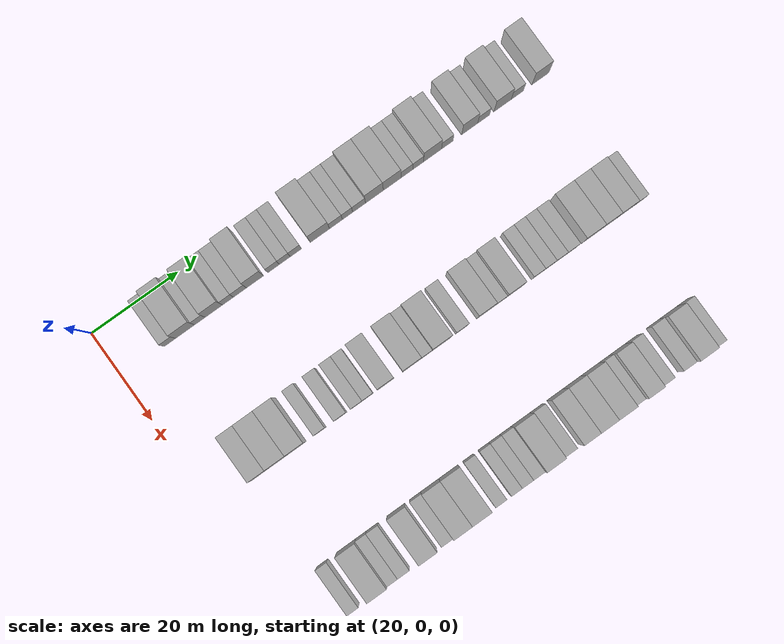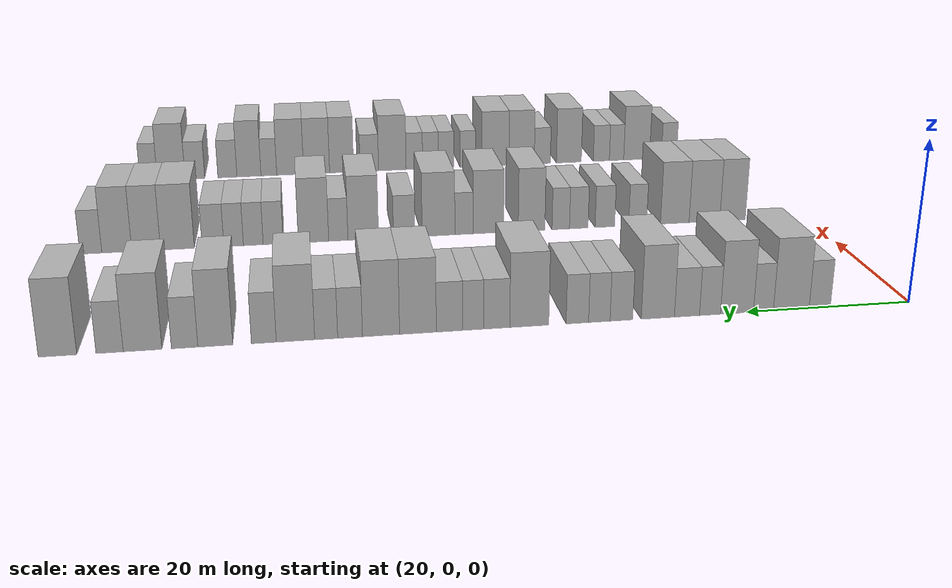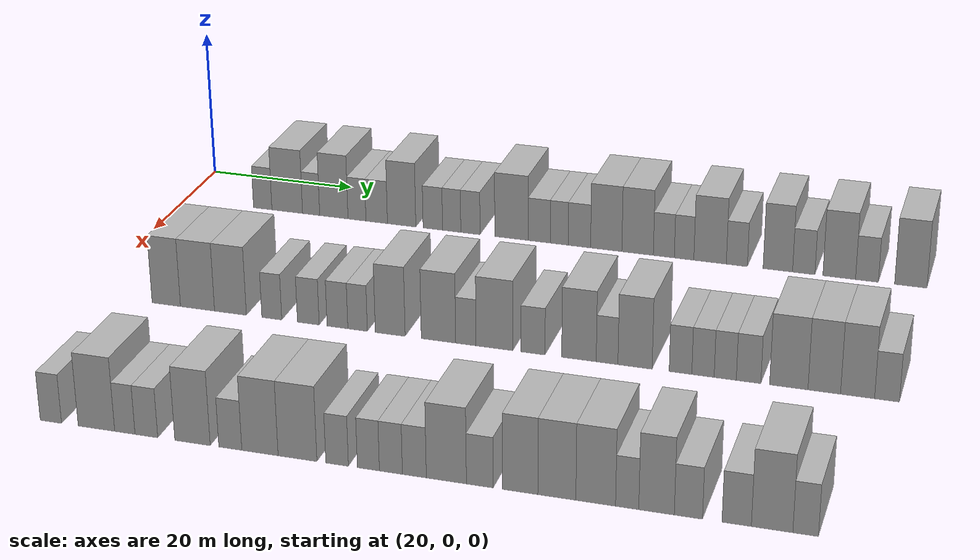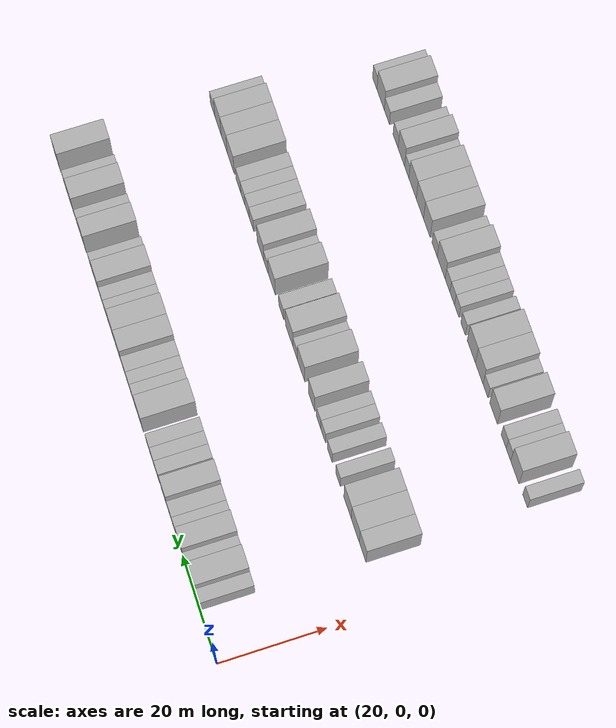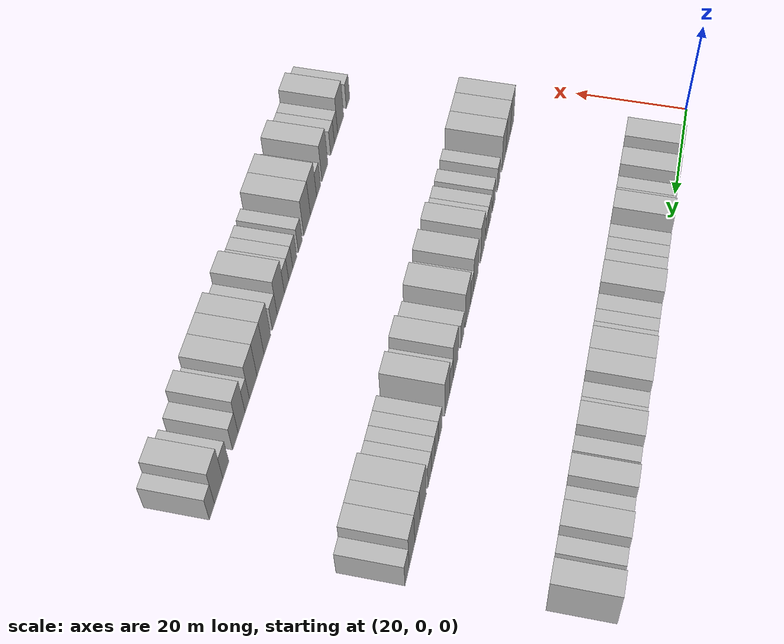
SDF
<sdf version="1.6">
 <world name="default">
  <model name="building_65">
   <static>1</static>
   <pose>25.0000 11.1082 0 0.000000 0.000000 0.000000</pose>
   <link name="link">
    <pose>0 0 3.00 0 0 0</pose>
    <collision name="collision"><geometry><box><size>10.0000 2.6236 6.0000</size></box></geometry></collision>
    <visual name="visual">
     <cast_shadows>0</cast_shadows>
     <geometry><box><size>10.0000 2.6236 6.0000</size></box></geometry>
     <material>
      <script>
       <uri>model://HANNAS_wall/materials/scripts</uri>
       <uri>model://HANNAS_wall/materials/textures</uri>
       <name>vrc/HANNAS_wall</name>
      </script>
     </material>
    </visual>
   </link>
  </model>
  <model name="building_66">
   <static>1</static>
   <pose>25.0000 14.5998 0 0.000000 0.000000 0.000000</pose>
   <link name="link">
    <pose>0 0 4.50 0 0 0</pose>
    <collision name="collision"><geometry><box><size>10.0000 4.3597 9.0000</size></box></geometry></collision>
    <visual name="visual">
     <cast_shadows>0</cast_shadows>
     <geometry><box><size>10.0000 4.3597 9.0000</size></box></geometry>
     <material>
      <script>
       <uri>model://HANNAS_wall/materials/scripts</uri>
       <uri>model://HANNAS_wall/materials/textures</uri>
       <name>vrc/HANNAS_wall</name>
      </script>
     </material>
    </visual>
   </link>
  </model>
  <model name="building_67">
   <static>1</static>
   <pose>25.0000 17.9887 0 0.000000 0.000000 0.000000</pose>
   <link name="link">
    <pose>0 0 3.00 0 0 0</pose>
    <collision name="collision"><geometry><box><size>10.0000 2.4182 6.0000</size></box></geometry></collision>
    <visual name="visual">
     <cast_shadows>0</cast_shadows>
     <geometry><box><size>10.0000 2.4182 6.0000</size></box></geometry>
     <material>
      <script>
       <uri>model://HANNAS_wall/materials/scripts</uri>
       <uri>model://HANNAS_wall/materials/textures</uri>
       <name>vrc/HANNAS_wall</name>
      </script>
     </material>
    </visual>
   </link>
  </model>
  <model name="building_68">
   <static>1</static>
   <pose>25.0000 21.1878 0 0.000000 0.000000 0.000000</pose>
   <link name="link">
    <pose>0 0 4.50 0 0 0</pose>
    <collision name="collision"><geometry><box><size>10.0000 3.9799 9.0000</size></box></geometry></collision>
    <visual name="visual">
     <cast_shadows>0</cast_shadows>
     <geometry><box><size>10.0000 3.9799 9.0000</size></box></geometry>
     <material>
      <script>
       <uri>model://HANNAS_wall/materials/scripts</uri>
       <uri>model://HANNAS_wall/materials/textures</uri>
       <name>vrc/HANNAS_wall</name>
      </script>
     </material>
    </visual>
   </link>
  </model>
  <model name="building_69">
   <static>1</static>
   <pose>25.0000 24.4337 0 0.000000 0.000000 0.000000</pose>
   <link name="link">
    <pose>0 0 3.00 0 0 0</pose>
    <collision name="collision"><geometry><box><size>10.0000 2.5120 6.0000</size></box></geometry></collision>
    <visual name="visual">
     <cast_shadows>0</cast_shadows>
     <geometry><box><size>10.0000 2.5120 6.0000</size></box></geometry>
     <material>
      <script>
       <uri>model://HANNAS_wall/materials/scripts</uri>
       <uri>model://HANNAS_wall/materials/textures</uri>
       <name>vrc/HANNAS_wall</name>
      </script>
     </material>
    </visual>
   </link>
  </model>
  <model name="building_70">
   <static>1</static>
   <pose>25.0000 27.1824 0 0.000000 0.000000 0.000000</pose>
   <link name="link">
    <pose>0 0 3.00 0 0 0</pose>
    <collision name="collision"><geometry><box><size>10.0000 2.9854 6.0000</size></box></geometry></collision>
    <visual name="visual">
     <cast_shadows>0</cast_shadows>
     <geometry><box><size>10.0000 2.9854 6.0000</size></box></geometry>
     <material>
      <script>
       <uri>model://HANNAS_wall/materials/scripts</uri>
       <uri>model://HANNAS_wall/materials/textures</uri>
       <name>vrc/HANNAS_wall</name>
      </script>
     </material>
    </visual>
   </link>
  </model>
  <model name="building_71">
   <static>1</static>
   <pose>25.0000 30.6385 0 0.000000 0.000000 0.000000</pose>
   <link name="link">
    <pose>0 0 4.50 0 0 0</pose>
    <collision name="collision"><geometry><box><size>10.0000 3.9269 9.0000</size></box></geometry></collision>
    <visual name="visual">
     <cast_shadows>0</cast_shadows>
     <geometry><box><size>10.0000 3.9269 9.0000</size></box></geometry>
     <material>
      <script>
       <uri>model://HANNAS_wall/materials/scripts</uri>
       <uri>model://HANNAS_wall/materials/textures</uri>
       <name>vrc/HANNAS_wall</name>
      </script>
     </material>
    </visual>
   </link>
  </model>
  <model name="building_72">
   <static>1</static>
   <pose>25.0000 34.9361 0 0.000000 0.000000 0.000000</pose>
   <link name="link">
    <pose>0 0 3.00 0 0 0</pose>
    <collision name="collision"><geometry><box><size>10.0000 2.6683 6.0000</size></box></geometry></collision>
    <visual name="visual">
     <cast_shadows>0</cast_shadows>
     <geometry><box><size>10.0000 2.6683 6.0000</size></box></geometry>
     <material>
      <script>
       <uri>model://HANNAS_wall/materials/scripts</uri>
       <uri>model://HANNAS_wall/materials/textures</uri>
       <name>vrc/HANNAS_wall</name>
      </script>
     </material>
    </visual>
   </link>
  </model>
  <model name="building_73">
   <static>1</static>
   <pose>25.0000 37.5183 0 0.000000 0.000000 0.000000</pose>
   <link name="link">
    <pose>0 0 3.00 0 0 0</pose>
    <collision name="collision"><geometry><box><size>10.0000 2.4961 6.0000</size></box></geometry></collision>
    <visual name="visual">
     <cast_shadows>0</cast_shadows>
     <geometry><box><size>10.0000 2.4961 6.0000</size></box></geometry>
     <material>
      <script>
       <uri>model://HANNAS_wall/materials/scripts</uri>
       <uri>model://HANNAS_wall/materials/textures</uri>
       <name>vrc/HANNAS_wall</name>
      </script>
     </material>
    </visual>
   </link>
  </model>
  <model name="building_74">
   <static>1</static>
   <pose>25.0000 40.0745 0 0.000000 0.000000 0.000000</pose>
   <link name="link">
    <pose>0 0 3.00 0 0 0</pose>
    <collision name="collision"><geometry><box><size>10.0000 2.6164 6.0000</size></box></geometry></collision>
    <visual name="visual">
     <cast_shadows>0</cast_shadows>
     <geometry><box><size>10.0000 2.6164 6.0000</size></box></geometry>
     <material>
      <script>
       <uri>model://HANNAS_wall/materials/scripts</uri>
       <uri>model://HANNAS_wall/materials/textures</uri>
       <name>vrc/HANNAS_wall</name>
      </script>
     </material>
    </visual>
   </link>
  </model>
  <model name="building_75">
   <static>1</static>
   <pose>25.0000 45.6232 0 0.000000 0.000000 0.000000</pose>
   <link name="link">
    <pose>0 0 4.50 0 0 0</pose>
    <collision name="collision"><geometry><box><size>10.0000 4.4810 9.0000</size></box></geometry></collision>
    <visual name="visual">
     <cast_shadows>0</cast_shadows>
     <geometry><box><size>10.0000 4.4810 9.0000</size></box></geometry>
     <material>
      <script>
       <uri>model://HANNAS_wall/materials/scripts</uri>
       <uri>model://HANNAS_wall/materials/textures</uri>
       <name>vrc/HANNAS_wall</name>
      </script>
     </material>
    </visual>
   </link>
  </model>
  <model name="building_76">
   <static>1</static>
   <pose>25.0000 49.3438 0 0.000000 0.000000 0.000000</pose>
   <link name="link">
    <pose>0 0 3.00 0 0 0</pose>
    <collision name="collision"><geometry><box><size>10.0000 2.9601 6.0000</size></box></geometry></collision>
    <visual name="visual">
     <cast_shadows>0</cast_shadows>
     <geometry><box><size>10.0000 2.9601 6.0000</size></box></geometry>
     <material>
      <script>
       <uri>model://HANNAS_wall/materials/scripts</uri>
       <uri>model://HANNAS_wall/materials/textures</uri>
       <name>vrc/HANNAS_wall</name>
      </script>
     </material>
    </visual>
   </link>
  </model>
  <model name="building_77">
   <static>1</static>
   <pose>25.0000 52.0245 0 0.000000 0.000000 0.000000</pose>
   <link name="link">
    <pose>0 0 3.00 0 0 0</pose>
    <collision name="collision"><geometry><box><size>10.0000 2.4015 6.0000</size></box></geometry></collision>
    <visual name="visual">
     <cast_shadows>0</cast_shadows>
     <geometry><box><size>10.0000 2.4015 6.0000</size></box></geometry>
     <material>
      <script>
       <uri>model://HANNAS_wall/materials/scripts</uri>
       <uri>model://HANNAS_wall/materials/textures</uri>
       <name>vrc/HANNAS_wall</name>
      </script>
     </material>
    </visual>
   </link>
  </model>
  <model name="building_78">
   <static>1</static>
   <pose>25.0000 54.7081 0 0.000000 0.000000 0.000000</pose>
   <link name="link">
    <pose>0 0 3.00 0 0 0</pose>
    <collision name="collision"><geometry><box><size>10.0000 2.9657 6.0000</size></box></geometry></collision>
    <visual name="visual">
     <cast_shadows>0</cast_shadows>
     <geometry><box><size>10.0000 2.9657 6.0000</size></box></geometry>
     <material>
      <script>
       <uri>model://HANNAS_wall/materials/scripts</uri>
       <uri>model://HANNAS_wall/materials/textures</uri>
       <name>vrc/HANNAS_wall</name>
      </script>
     </material>
    </visual>
   </link>
  </model>
  <model name="building_79">
   <static>1</static>
   <pose>25.0000 58.2457 0 0.000000 0.000000 0.000000</pose>
   <link name="link">
    <pose>0 0 4.50 0 0 0</pose>
    <collision name="collision"><geometry><box><size>10.0000 4.1094 9.0000</size></box></geometry></collision>
    <visual name="visual">
     <cast_shadows>0</cast_shadows>
     <geometry><box><size>10.0000 4.1094 9.0000</size></box></geometry>
     <material>
      <script>
       <uri>model://HANNAS_wall/materials/scripts</uri>
       <uri>model://HANNAS_wall/materials/textures</uri>
       <name>vrc/HANNAS_wall</name>
      </script>
     </material>
    </visual>
   </link>
  </model>
  <model name="building_80">
   <static>1</static>
   <pose>25.0000 62.3582 0 0.000000 0.000000 0.000000</pose>
   <link name="link">
    <pose>0 0 4.50 0 0 0</pose>
    <collision name="collision"><geometry><box><size>10.0000 4.1156 9.0000</size></box></geometry></collision>
    <visual name="visual">
     <cast_shadows>0</cast_shadows>
     <geometry><box><size>10.0000 4.1156 9.0000</size></box></geometry>
     <material>
      <script>
       <uri>model://HANNAS_wall/materials/scripts</uri>
       <uri>model://HANNAS_wall/materials/textures</uri>
       <name>vrc/HANNAS_wall</name>
      </script>
     </material>
    </visual>
   </link>
  </model>
  <model name="building_81">
   <static>1</static>
   <pose>25.0000 65.7816 0 0.000000 0.000000 0.000000</pose>
   <link name="link">
    <pose>0 0 3.00 0 0 0</pose>
    <collision name="collision"><geometry><box><size>10.0000 2.7313 6.0000</size></box></geometry></collision>
    <visual name="visual">
     <cast_shadows>0</cast_shadows>
     <geometry><box><size>10.0000 2.7313 6.0000</size></box></geometry>
     <material>
      <script>
       <uri>model://HANNAS_wall/materials/scripts</uri>
       <uri>model://HANNAS_wall/materials/textures</uri>
       <name>vrc/HANNAS_wall</name>
      </script>
     </material>
    </visual>
   </link>
  </model>
  <model name="building_82">
   <static>1</static>
   <pose>25.0000 68.4091 0 0.000000 0.000000 0.000000</pose>
   <link name="link">
    <pose>0 0 3.00 0 0 0</pose>
    <collision name="collision"><geometry><box><size>10.0000 2.5238 6.0000</size></box></geometry></collision>
    <visual name="visual">
     <cast_shadows>0</cast_shadows>
     <geometry><box><size>10.0000 2.5238 6.0000</size></box></geometry>
     <material>
      <script>
       <uri>model://HANNAS_wall/materials/scripts</uri>
       <uri>model://HANNAS_wall/materials/textures</uri>
       <name>vrc/HANNAS_wall</name>
      </script>
     </material>
    </visual>
   </link>
  </model>
  <model name="building_83">
   <static>1</static>
   <pose>25.0000 71.7582 0 0.000000 0.000000 0.000000</pose>
   <link name="link">
    <pose>0 0 4.50 0 0 0</pose>
    <collision name="collision"><geometry><box><size>10.0000 4.1743 9.0000</size></box></geometry></collision>
    <visual name="visual">
     <cast_shadows>0</cast_shadows>
     <geometry><box><size>10.0000 4.1743 9.0000</size></box></geometry>
     <material>
      <script>
       <uri>model://HANNAS_wall/materials/scripts</uri>
       <uri>model://HANNAS_wall/materials/textures</uri>
       <name>vrc/HANNAS_wall</name>
      </script>
     </material>
    </visual>
   </link>
  </model>
  <model name="building_84">
   <static>1</static>
   <pose>25.0000 75.1917 0 0.000000 0.000000 0.000000</pose>
   <link name="link">
    <pose>0 0 3.00 0 0 0</pose>
    <collision name="collision"><geometry><box><size>10.0000 2.6928 6.0000</size></box></geometry></collision>
    <visual name="visual">
     <cast_shadows>0</cast_shadows>
     <geometry><box><size>10.0000 2.6928 6.0000</size></box></geometry>
     <material>
      <script>
       <uri>model://HANNAS_wall/materials/scripts</uri>
       <uri>model://HANNAS_wall/materials/textures</uri>
       <name>vrc/HANNAS_wall</name>
      </script>
     </material>
    </visual>
   </link>
  </model>
  <model name="building_85">
   <static>1</static>
   <pose>25.0000 80.4034 0 0.000000 0.000000 0.000000</pose>
   <link name="link">
    <pose>0 0 4.50 0 0 0</pose>
    <collision name="collision"><geometry><box><size>10.0000 3.7305 9.0000</size></box></geometry></collision>
    <visual name="visual">
     <cast_shadows>0</cast_shadows>
     <geometry><box><size>10.0000 3.7305 9.0000</size></box></geometry>
     <material>
      <script>
       <uri>model://HANNAS_wall/materials/scripts</uri>
       <uri>model://HANNAS_wall/materials/textures</uri>
       <name>vrc/HANNAS_wall</name>
      </script>
     </material>
    </visual>
   </link>
  </model>
  <model name="building_86">
   <static>1</static>
   <pose>25.0000 83.6739 0 0.000000 0.000000 0.000000</pose>
   <link name="link">
    <pose>0 0 3.00 0 0 0</pose>
    <collision name="collision"><geometry><box><size>10.0000 2.8105 6.0000</size></box></geometry></collision>
    <visual name="visual">
     <cast_shadows>0</cast_shadows>
     <geometry><box><size>10.0000 2.8105 6.0000</size></box></geometry>
     <material>
      <script>
       <uri>model://HANNAS_wall/materials/scripts</uri>
       <uri>model://HANNAS_wall/materials/textures</uri>
       <name>vrc/HANNAS_wall</name>
      </script>
     </material>
    </visual>
   </link>
  </model>
  <model name="building_87">
   <static>1</static>
   <pose>25.0000 88.1157 0 0.000000 0.000000 0.000000</pose>
   <link name="link">
    <pose>0 0 4.50 0 0 0</pose>
    <collision name="collision"><geometry><box><size>10.0000 4.0730 9.0000</size></box></geometry></collision>
    <visual name="visual">
     <cast_shadows>0</cast_shadows>
     <geometry><box><size>10.0000 4.0730 9.0000</size></box></geometry>
     <material>
      <script>
       <uri>model://HANNAS_wall/materials/scripts</uri>
       <uri>model://HANNAS_wall/materials/textures</uri>
       <name>vrc/HANNAS_wall</name>
      </script>
     </material>
    </visual>
   </link>
  </model>
  <model name="building_88">
   <static>1</static>
   <pose>25.0000 91.5706 0 0.000000 0.000000 0.000000</pose>
   <link name="link">
    <pose>0 0 3.00 0 0 0</pose>
    <collision name="collision"><geometry><box><size>10.0000 2.8370 6.0000</size></box></geometry></collision>
    <visual name="visual">
     <cast_shadows>0</cast_shadows>
     <geometry><box><size>10.0000 2.8370 6.0000</size></box></geometry>
     <material>
      <script>
       <uri>model://HANNAS_wall/materials/scripts</uri>
       <uri>model://HANNAS_wall/materials/textures</uri>
       <name>vrc/HANNAS_wall</name>
      </script>
     </material>
    </visual>
   </link>
  </model>
  <model name="building_89">
   <static>1</static>
   <pose>25.0000 96.9787 0 0.000000 0.000000 0.000000</pose>
   <link name="link">
    <pose>0 0 4.50 0 0 0</pose>
    <collision name="collision"><geometry><box><size>10.0000 3.9792 9.0000</size></box></geometry></collision>
    <visual name="visual">
     <cast_shadows>0</cast_shadows>
     <geometry><box><size>10.0000 3.9792 9.0000</size></box></geometry>
     <material>
      <script>
       <uri>model://HANNAS_wall/materials/scripts</uri>
       <uri>model://HANNAS_wall/materials/textures</uri>
       <name>vrc/HANNAS_wall</name>
      </script>
     </material>
    </visual>
   </link>
  </model>
  <model name="building_212">
   <static>1</static>
   <pose>55.0000 10.7284 0 0.000000 0.000000 0.000000</pose>
   <link name="link">
    <pose>0 0 4.50 0 0 0</pose>
    <collision name="collision"><geometry><box><size>10.0000 3.7277 9.0000</size></box></geometry></collision>
    <visual name="visual">
     <cast_shadows>0</cast_shadows>
     <geometry><box><size>10.0000 3.7277 9.0000</size></box></geometry>
     <material>
      <script>
       <uri>model://HANNAS_wall/materials/scripts</uri>
       <uri>model://HANNAS_wall/materials/textures</uri>
       <name>vrc/HANNAS_wall</name>
      </script>
     </material>
    </visual>
   </link>
  </model>
  <model name="building_213">
   <static>1</static>
   <pose>55.0000 14.8205 0 0.000000 0.000000 0.000000</pose>
   <link name="link">
    <pose>0 0 4.50 0 0 0</pose>
    <collision name="collision"><geometry><box><size>10.0000 4.4565 9.0000</size></box></geometry></collision>
    <visual name="visual">
     <cast_shadows>0</cast_shadows>
     <geometry><box><size>10.0000 4.4565 9.0000</size></box></geometry>
     <material>
      <script>
       <uri>model://HANNAS_wall/materials/scripts</uri>
       <uri>model://HANNAS_wall/materials/textures</uri>
       <name>vrc/HANNAS_wall</name>
      </script>
     </material>
    </visual>
   </link>
  </model>
  <model name="building_214">
   <static>1</static>
   <pose>55.0000 19.1131 0 0.000000 0.000000 0.000000</pose>
   <link name="link">
    <pose>0 0 4.50 0 0 0</pose>
    <collision name="collision"><geometry><box><size>10.0000 4.1287 9.0000</size></box></geometry></collision>
    <visual name="visual">
     <cast_shadows>0</cast_shadows>
     <geometry><box><size>10.0000 4.1287 9.0000</size></box></geometry>
     <material>
      <script>
       <uri>model://HANNAS_wall/materials/scripts</uri>
       <uri>model://HANNAS_wall/materials/textures</uri>
       <name>vrc/HANNAS_wall</name>
      </script>
     </material>
    </visual>
   </link>
  </model>
  <model name="building_215">
   <static>1</static>
   <pose>55.0000 24.4549 0 0.000000 0.000000 0.000000</pose>
   <link name="link">
    <pose>0 0 3.00 0 0 0</pose>
    <collision name="collision"><geometry><box><size>10.0000 2.5549 6.0000</size></box></geometry></collision>
    <visual name="visual">
     <cast_shadows>0</cast_shadows>
     <geometry><box><size>10.0000 2.5549 6.0000</size></box></geometry>
     <material>
      <script>
       <uri>model://HANNAS_wall/materials/scripts</uri>
       <uri>model://HANNAS_wall/materials/textures</uri>
       <name>vrc/HANNAS_wall</name>
      </script>
     </material>
    </visual>
   </link>
  </model>
  <model name="building_216">
   <static>1</static>
   <pose>55.0000 29.1172 0 0.000000 0.000000 0.000000</pose>
   <link name="link">
    <pose>0 0 3.00 0 0 0</pose>
    <collision name="collision"><geometry><box><size>10.0000 2.7696 6.0000</size></box></geometry></collision>
    <visual name="visual">
     <cast_shadows>0</cast_shadows>
     <geometry><box><size>10.0000 2.7696 6.0000</size></box></geometry>
     <material>
      <script>
       <uri>model://HANNAS_wall/materials/scripts</uri>
       <uri>model://HANNAS_wall/materials/textures</uri>
       <name>vrc/HANNAS_wall</name>
      </script>
     </material>
    </visual>
   </link>
  </model>
  <model name="building_217">
   <static>1</static>
   <pose>55.0000 32.8130 0 0.000000 0.000000 0.000000</pose>
   <link name="link">
    <pose>0 0 3.00 0 0 0</pose>
    <collision name="collision"><geometry><box><size>10.0000 2.6220 6.0000</size></box></geometry></collision>
    <visual name="visual">
     <cast_shadows>0</cast_shadows>
     <geometry><box><size>10.0000 2.6220 6.0000</size></box></geometry>
     <material>
      <script>
       <uri>model://HANNAS_wall/materials/scripts</uri>
       <uri>model://HANNAS_wall/materials/textures</uri>
       <name>vrc/HANNAS_wall</name>
      </script>
     </material>
    </visual>
   </link>
  </model>
  <model name="building_218">
   <static>1</static>
   <pose>55.0000 35.3503 0 0.000000 0.000000 0.000000</pose>
   <link name="link">
    <pose>0 0 3.00 0 0 0</pose>
    <collision name="collision"><geometry><box><size>10.0000 2.4526 6.0000</size></box></geometry></collision>
    <visual name="visual">
     <cast_shadows>0</cast_shadows>
     <geometry><box><size>10.0000 2.4526 6.0000</size></box></geometry>
     <material>
      <script>
       <uri>model://HANNAS_wall/materials/scripts</uri>
       <uri>model://HANNAS_wall/materials/textures</uri>
       <name>vrc/HANNAS_wall</name>
      </script>
     </material>
    </visual>
   </link>
  </model>
  <model name="building_219">
   <static>1</static>
   <pose>55.0000 39.4381 0 0.000000 0.000000 0.000000</pose>
   <link name="link">
    <pose>0 0 4.50 0 0 0</pose>
    <collision name="collision"><geometry><box><size>10.0000 3.7230 9.0000</size></box></geometry></collision>
    <visual name="visual">
     <cast_shadows>0</cast_shadows>
     <geometry><box><size>10.0000 3.7230 9.0000</size></box></geometry>
     <material>
      <script>
       <uri>model://HANNAS_wall/materials/scripts</uri>
       <uri>model://HANNAS_wall/materials/textures</uri>
       <name>vrc/HANNAS_wall</name>
      </script>
     </material>
    </visual>
   </link>
  </model>
  <model name="building_220">
   <static>1</static>
   <pose>55.0000 45.4221 0 0.000000 0.000000 0.000000</pose>
   <link name="link">
    <pose>0 0 4.50 0 0 0</pose>
    <collision name="collision"><geometry><box><size>10.0000 4.2451 9.0000</size></box></geometry></collision>
    <visual name="visual">
     <cast_shadows>0</cast_shadows>
     <geometry><box><size>10.0000 4.2451 9.0000</size></box></geometry>
     <material>
      <script>
       <uri>model://HANNAS_wall/materials/scripts</uri>
       <uri>model://HANNAS_wall/materials/textures</uri>
       <name>vrc/HANNAS_wall</name>
      </script>
     </material>
    </visual>
   </link>
  </model>
  <model name="building_221">
   <static>1</static>
   <pose>55.0000 48.7915 0 0.000000 0.000000 0.000000</pose>
   <link name="link">
    <pose>0 0 3.00 0 0 0</pose>
    <collision name="collision"><geometry><box><size>10.0000 2.4937 6.0000</size></box></geometry></collision>
    <visual name="visual">
     <cast_shadows>0</cast_shadows>
     <geometry><box><size>10.0000 2.4937 6.0000</size></box></geometry>
     <material>
      <script>
       <uri>model://HANNAS_wall/materials/scripts</uri>
       <uri>model://HANNAS_wall/materials/textures</uri>
       <name>vrc/HANNAS_wall</name>
      </script>
     </material>
    </visual>
   </link>
  </model>
  <model name="building_222">
   <static>1</static>
   <pose>55.0000 52.2768 0 0.000000 0.000000 0.000000</pose>
   <link name="link">
    <pose>0 0 4.50 0 0 0</pose>
    <collision name="collision"><geometry><box><size>10.0000 4.4768 9.0000</size></box></geometry></collision>
    <visual name="visual">
     <cast_shadows>0</cast_shadows>
     <geometry><box><size>10.0000 4.4768 9.0000</size></box></geometry>
     <material>
      <script>
       <uri>model://HANNAS_wall/materials/scripts</uri>
       <uri>model://HANNAS_wall/materials/textures</uri>
       <name>vrc/HANNAS_wall</name>
      </script>
     </material>
    </visual>
   </link>
  </model>
  <model name="building_223">
   <static>1</static>
   <pose>55.0000 56.9587 0 0.000000 0.000000 0.000000</pose>
   <link name="link">
    <pose>0 0 3.00 0 0 0</pose>
    <collision name="collision"><geometry><box><size>10.0000 2.8870 6.0000</size></box></geometry></collision>
    <visual name="visual">
     <cast_shadows>0</cast_shadows>
     <geometry><box><size>10.0000 2.8870 6.0000</size></box></geometry>
     <material>
      <script>
       <uri>model://HANNAS_wall/materials/scripts</uri>
       <uri>model://HANNAS_wall/materials/textures</uri>
       <name>vrc/HANNAS_wall</name>
      </script>
     </material>
    </visual>
   </link>
  </model>
  <model name="building_224">
   <static>1</static>
   <pose>55.0000 62.4587 0 0.000000 0.000000 0.000000</pose>
   <link name="link">
    <pose>0 0 4.50 0 0 0</pose>
    <collision name="collision"><geometry><box><size>10.0000 4.1131 9.0000</size></box></geometry></collision>
    <visual name="visual">
     <cast_shadows>0</cast_shadows>
     <geometry><box><size>10.0000 4.1131 9.0000</size></box></geometry>
     <material>
      <script>
       <uri>model://HANNAS_wall/materials/scripts</uri>
       <uri>model://HANNAS_wall/materials/textures</uri>
       <name>vrc/HANNAS_wall</name>
      </script>
     </material>
    </visual>
   </link>
  </model>
  <model name="building_225">
   <static>1</static>
   <pose>55.0000 65.7996 0 0.000000 0.000000 0.000000</pose>
   <link name="link">
    <pose>0 0 3.00 0 0 0</pose>
    <collision name="collision"><geometry><box><size>10.0000 2.5687 6.0000</size></box></geometry></collision>
    <visual name="visual">
     <cast_shadows>0</cast_shadows>
     <geometry><box><size>10.0000 2.5687 6.0000</size></box></geometry>
     <material>
      <script>
       <uri>model://HANNAS_wall/materials/scripts</uri>
       <uri>model://HANNAS_wall/materials/textures</uri>
       <name>vrc/HANNAS_wall</name>
      </script>
     </material>
    </visual>
   </link>
  </model>
  <model name="building_226">
   <static>1</static>
   <pose>55.0000 69.0962 0 0.000000 0.000000 0.000000</pose>
   <link name="link">
    <pose>0 0 4.50 0 0 0</pose>
    <collision name="collision"><geometry><box><size>10.0000 4.0246 9.0000</size></box></geometry></collision>
    <visual name="visual">
     <cast_shadows>0</cast_shadows>
     <geometry><box><size>10.0000 4.0246 9.0000</size></box></geometry>
     <material>
      <script>
       <uri>model://HANNAS_wall/materials/scripts</uri>
       <uri>model://HANNAS_wall/materials/textures</uri>
       <name>vrc/HANNAS_wall</name>
      </script>
     </material>
    </visual>
   </link>
  </model>
  <model name="building_227">
   <static>1</static>
   <pose>55.0000 74.4256 0 0.000000 0.000000 0.000000</pose>
   <link name="link">
    <pose>0 0 3.00 0 0 0</pose>
    <collision name="collision"><geometry><box><size>10.0000 2.6343 6.0000</size></box></geometry></collision>
    <visual name="visual">
     <cast_shadows>0</cast_shadows>
     <geometry><box><size>10.0000 2.6343 6.0000</size></box></geometry>
     <material>
      <script>
       <uri>model://HANNAS_wall/materials/scripts</uri>
       <uri>model://HANNAS_wall/materials/textures</uri>
       <name>vrc/HANNAS_wall</name>
      </script>
     </material>
    </visual>
   </link>
  </model>
  <model name="building_228">
   <static>1</static>
   <pose>55.0000 77.0365 0 0.000000 0.000000 0.000000</pose>
   <link name="link">
    <pose>0 0 3.00 0 0 0</pose>
    <collision name="collision"><geometry><box><size>10.0000 2.5875 6.0000</size></box></geometry></collision>
    <visual name="visual">
     <cast_shadows>0</cast_shadows>
     <geometry><box><size>10.0000 2.5875 6.0000</size></box></geometry>
     <material>
      <script>
       <uri>model://HANNAS_wall/materials/scripts</uri>
       <uri>model://HANNAS_wall/materials/textures</uri>
       <name>vrc/HANNAS_wall</name>
      </script>
     </material>
    </visual>
   </link>
  </model>
  <model name="building_229">
   <static>1</static>
   <pose>55.0000 79.6064 0 0.000000 0.000000 0.000000</pose>
   <link name="link">
    <pose>0 0 3.00 0 0 0</pose>
    <collision name="collision"><geometry><box><size>10.0000 2.5523 6.0000</size></box></geometry></collision>
    <visual name="visual">
     <cast_shadows>0</cast_shadows>
     <geometry><box><size>10.0000 2.5523 6.0000</size></box></geometry>
     <material>
      <script>
       <uri>model://HANNAS_wall/materials/scripts</uri>
       <uri>model://HANNAS_wall/materials/textures</uri>
       <name>vrc/HANNAS_wall</name>
      </script>
     </material>
    </visual>
   </link>
  </model>
  <model name="building_230">
   <static>1</static>
   <pose>55.0000 82.2901 0 0.000000 0.000000 0.000000</pose>
   <link name="link">
    <pose>0 0 3.00 0 0 0</pose>
    <collision name="collision"><geometry><box><size>10.0000 2.8150 6.0000</size></box></geometry></collision>
    <visual name="visual">
     <cast_shadows>0</cast_shadows>
     <geometry><box><size>10.0000 2.8150 6.0000</size></box></geometry>
     <material>
      <script>
       <uri>model://HANNAS_wall/materials/scripts</uri>
       <uri>model://HANNAS_wall/materials/textures</uri>
       <name>vrc/HANNAS_wall</name>
      </script>
     </material>
    </visual>
   </link>
  </model>
  <model name="building_231">
   <static>1</static>
   <pose>55.0000 86.8765 0 0.000000 0.000000 0.000000</pose>
   <link name="link">
    <pose>0 0 4.50 0 0 0</pose>
    <collision name="collision"><geometry><box><size>10.0000 4.3578 9.0000</size></box></geometry></collision>
    <visual name="visual">
     <cast_shadows>0</cast_shadows>
     <geometry><box><size>10.0000 4.3578 9.0000</size></box></geometry>
     <material>
      <script>
       <uri>model://HANNAS_wall/materials/scripts</uri>
       <uri>model://HANNAS_wall/materials/textures</uri>
       <name>vrc/HANNAS_wall</name>
      </script>
     </material>
    </visual>
   </link>
  </model>
  <model name="building_232">
   <static>1</static>
   <pose>55.0000 90.8904 0 0.000000 0.000000 0.000000</pose>
   <link name="link">
    <pose>0 0 4.50 0 0 0</pose>
    <collision name="collision"><geometry><box><size>10.0000 3.6701 9.0000</size></box></geometry></collision>
    <visual name="visual">
     <cast_shadows>0</cast_shadows>
     <geometry><box><size>10.0000 3.6701 9.0000</size></box></geometry>
     <material>
      <script>
       <uri>model://HANNAS_wall/materials/scripts</uri>
       <uri>model://HANNAS_wall/materials/textures</uri>
       <name>vrc/HANNAS_wall</name>
      </script>
     </material>
    </visual>
   </link>
  </model>
  <model name="building_233">
   <static>1</static>
   <pose>55.0000 94.6288 0 0.000000 0.000000 0.000000</pose>
   <link name="link">
    <pose>0 0 4.50 0 0 0</pose>
    <collision name="collision"><geometry><box><size>10.0000 3.8067 9.0000</size></box></geometry></collision>
    <visual name="visual">
     <cast_shadows>0</cast_shadows>
     <geometry><box><size>10.0000 3.8067 9.0000</size></box></geometry>
     <material>
      <script>
       <uri>model://HANNAS_wall/materials/scripts</uri>
       <uri>model://HANNAS_wall/materials/textures</uri>
       <name>vrc/HANNAS_wall</name>
      </script>
     </material>
    </visual>
   </link>
  </model>
  <model name="building_234">
   <static>1</static>
   <pose>55.0000 97.9153 0 0.000000 0.000000 0.000000</pose>
   <link name="link">
    <pose>0 0 3.00 0 0 0</pose>
    <collision name="collision"><geometry><box><size>10.0000 2.7663 6.0000</size></box></geometry></collision>
    <visual name="visual">
     <cast_shadows>0</cast_shadows>
     <geometry><box><size>10.0000 2.7663 6.0000</size></box></geometry>
     <material>
      <script>
       <uri>model://HANNAS_wall/materials/scripts</uri>
       <uri>model://HANNAS_wall/materials/textures</uri>
       <name>vrc/HANNAS_wall</name>
      </script>
     </material>
    </visual>
   </link>
  </model>
  <model name="building_361">
   <static>1</static>
   <pose>85.0000 10.5962 0 0.000000 0.000000 0.000000</pose>
   <link name="link">
    <pose>0 0 3.00 0 0 0</pose>
    <collision name="collision"><geometry><box><size>10.0000 2.5640 6.0000</size></box></geometry></collision>
    <visual name="visual">
     <cast_shadows>0</cast_shadows>
     <geometry><box><size>10.0000 2.5640 6.0000</size></box></geometry>
     <material>
      <script>
       <uri>model://HANNAS_wall/materials/scripts</uri>
       <uri>model://HANNAS_wall/materials/textures</uri>
       <name>vrc/HANNAS_wall</name>
      </script>
     </material>
    </visual>
   </link>
  </model>
  <model name="building_362">
   <static>1</static>
   <pose>85.0000 16.0519 0 0.000000 0.000000 0.000000</pose>
   <link name="link">
    <pose>0 0 4.50 0 0 0</pose>
    <collision name="collision"><geometry><box><size>10.0000 4.3472 9.0000</size></box></geometry></collision>
    <visual name="visual">
     <cast_shadows>0</cast_shadows>
     <geometry><box><size>10.0000 4.3472 9.0000</size></box></geometry>
     <material>
      <script>
       <uri>model://HANNAS_wall/materials/scripts</uri>
       <uri>model://HANNAS_wall/materials/textures</uri>
       <name>vrc/HANNAS_wall</name>
      </script>
     </material>
    </visual>
   </link>
  </model>
  <model name="building_363">
   <static>1</static>
   <pose>85.0000 19.4262 0 0.000000 0.000000 0.000000</pose>
   <link name="link">
    <pose>0 0 3.00 0 0 0</pose>
    <collision name="collision"><geometry><box><size>10.0000 2.4014 6.0000</size></box></geometry></collision>
    <visual name="visual">
     <cast_shadows>0</cast_shadows>
     <geometry><box><size>10.0000 2.4014 6.0000</size></box></geometry>
     <material>
      <script>
       <uri>model://HANNAS_wall/materials/scripts</uri>
       <uri>model://HANNAS_wall/materials/textures</uri>
       <name>vrc/HANNAS_wall</name>
      </script>
     </material>
    </visual>
   </link>
  </model>
  <model name="building_364">
   <static>1</static>
   <pose>85.0000 21.9648 0 0.000000 0.000000 0.000000</pose>
   <link name="link">
    <pose>0 0 3.00 0 0 0</pose>
    <collision name="collision"><geometry><box><size>10.0000 2.6758 6.0000</size></box></geometry></collision>
    <visual name="visual">
     <cast_shadows>0</cast_shadows>
     <geometry><box><size>10.0000 2.6758 6.0000</size></box></geometry>
     <material>
      <script>
       <uri>model://HANNAS_wall/materials/scripts</uri>
       <uri>model://HANNAS_wall/materials/textures</uri>
       <name>vrc/HANNAS_wall</name>
      </script>
     </material>
    </visual>
   </link>
  </model>
  <model name="building_365">
   <static>1</static>
   <pose>85.0000 27.3590 0 0.000000 0.000000 0.000000</pose>
   <link name="link">
    <pose>0 0 4.50 0 0 0</pose>
    <collision name="collision"><geometry><box><size>10.0000 4.1127 9.0000</size></box></geometry></collision>
    <visual name="visual">
     <cast_shadows>0</cast_shadows>
     <geometry><box><size>10.0000 4.1127 9.0000</size></box></geometry>
     <material>
      <script>
       <uri>model://HANNAS_wall/materials/scripts</uri>
       <uri>model://HANNAS_wall/materials/textures</uri>
       <name>vrc/HANNAS_wall</name>
      </script>
     </material>
    </visual>
   </link>
  </model>
  <model name="building_366">
   <static>1</static>
   <pose>85.0000 31.7398 0 0.000000 0.000000 0.000000</pose>
   <link name="link">
    <pose>0 0 3.00 0 0 0</pose>
    <collision name="collision"><geometry><box><size>10.0000 2.6488 6.0000</size></box></geometry></collision>
    <visual name="visual">
     <cast_shadows>0</cast_shadows>
     <geometry><box><size>10.0000 2.6488 6.0000</size></box></geometry>
     <material>
      <script>
       <uri>model://HANNAS_wall/materials/scripts</uri>
       <uri>model://HANNAS_wall/materials/textures</uri>
       <name>vrc/HANNAS_wall</name>
      </script>
     </material>
    </visual>
   </link>
  </model>
  <model name="building_367">
   <static>1</static>
   <pose>85.0000 35.1398 0 0.000000 0.000000 0.000000</pose>
   <link name="link">
    <pose>0 0 4.50 0 0 0</pose>
    <collision name="collision"><geometry><box><size>10.0000 4.1513 9.0000</size></box></geometry></collision>
    <visual name="visual">
     <cast_shadows>0</cast_shadows>
     <geometry><box><size>10.0000 4.1513 9.0000</size></box></geometry>
     <material>
      <script>
       <uri>model://HANNAS_wall/materials/scripts</uri>
       <uri>model://HANNAS_wall/materials/textures</uri>
       <name>vrc/HANNAS_wall</name>
      </script>
     </material>
    </visual>
   </link>
  </model>
  <model name="building_368">
   <static>1</static>
   <pose>85.0000 39.4175 0 0.000000 0.000000 0.000000</pose>
   <link name="link">
    <pose>0 0 4.50 0 0 0</pose>
    <collision name="collision"><geometry><box><size>10.0000 4.4042 9.0000</size></box></geometry></collision>
    <visual name="visual">
     <cast_shadows>0</cast_shadows>
     <geometry><box><size>10.0000 4.4042 9.0000</size></box></geometry>
     <material>
      <script>
       <uri>model://HANNAS_wall/materials/scripts</uri>
       <uri>model://HANNAS_wall/materials/textures</uri>
       <name>vrc/HANNAS_wall</name>
      </script>
     </material>
    </visual>
   </link>
  </model>
  <model name="building_369">
   <static>1</static>
   <pose>85.0000 43.8897 0 0.000000 0.000000 0.000000</pose>
   <link name="link">
    <pose>0 0 3.00 0 0 0</pose>
    <collision name="collision"><geometry><box><size>10.0000 2.5403 6.0000</size></box></geometry></collision>
    <visual name="visual">
     <cast_shadows>0</cast_shadows>
     <geometry><box><size>10.0000 2.5403 6.0000</size></box></geometry>
     <material>
      <script>
       <uri>model://HANNAS_wall/materials/scripts</uri>
       <uri>model://HANNAS_wall/materials/textures</uri>
       <name>vrc/HANNAS_wall</name>
      </script>
     </material>
    </visual>
   </link>
  </model>
  <model name="building_370">
   <static>1</static>
   <pose>85.0000 47.3874 0 0.000000 0.000000 0.000000</pose>
   <link name="link">
    <pose>0 0 3.00 0 0 0</pose>
    <collision name="collision"><geometry><box><size>10.0000 2.4550 6.0000</size></box></geometry></collision>
    <visual name="visual">
     <cast_shadows>0</cast_shadows>
     <geometry><box><size>10.0000 2.4550 6.0000</size></box></geometry>
     <material>
      <script>
       <uri>model://HANNAS_wall/materials/scripts</uri>
       <uri>model://HANNAS_wall/materials/textures</uri>
       <name>vrc/HANNAS_wall</name>
      </script>
     </material>
    </visual>
   </link>
  </model>
  <model name="building_371">
   <static>1</static>
   <pose>85.0000 49.8883 0 0.000000 0.000000 0.000000</pose>
   <link name="link">
    <pose>0 0 3.00 0 0 0</pose>
    <collision name="collision"><geometry><box><size>10.0000 2.5467 6.0000</size></box></geometry></collision>
    <visual name="visual">
     <cast_shadows>0</cast_shadows>
     <geometry><box><size>10.0000 2.5467 6.0000</size></box></geometry>
     <material>
      <script>
       <uri>model://HANNAS_wall/materials/scripts</uri>
       <uri>model://HANNAS_wall/materials/textures</uri>
       <name>vrc/HANNAS_wall</name>
      </script>
     </material>
    </visual>
   </link>
  </model>
  <model name="building_372">
   <static>1</static>
   <pose>85.0000 52.4806 0 0.000000 0.000000 0.000000</pose>
   <link name="link">
    <pose>0 0 3.00 0 0 0</pose>
    <collision name="collision"><geometry><box><size>10.0000 2.6380 6.0000</size></box></geometry></collision>
    <visual name="visual">
     <cast_shadows>0</cast_shadows>
     <geometry><box><size>10.0000 2.6380 6.0000</size></box></geometry>
     <material>
      <script>
       <uri>model://HANNAS_wall/materials/scripts</uri>
       <uri>model://HANNAS_wall/materials/textures</uri>
       <name>vrc/HANNAS_wall</name>
      </script>
     </material>
    </visual>
   </link>
  </model>
  <model name="building_373">
   <static>1</static>
   <pose>85.0000 55.9910 0 0.000000 0.000000 0.000000</pose>
   <link name="link">
    <pose>0 0 4.50 0 0 0</pose>
    <collision name="collision"><geometry><box><size>10.0000 4.3828 9.0000</size></box></geometry></collision>
    <visual name="visual">
     <cast_shadows>0</cast_shadows>
     <geometry><box><size>10.0000 4.3828 9.0000</size></box></geometry>
     <material>
      <script>
       <uri>model://HANNAS_wall/materials/scripts</uri>
       <uri>model://HANNAS_wall/materials/textures</uri>
       <name>vrc/HANNAS_wall</name>
      </script>
     </material>
    </visual>
   </link>
  </model>
  <model name="building_374">
   <static>1</static>
   <pose>85.0000 59.6387 0 0.000000 0.000000 0.000000</pose>
   <link name="link">
    <pose>0 0 3.00 0 0 0</pose>
    <collision name="collision"><geometry><box><size>10.0000 2.9126 6.0000</size></box></geometry></collision>
    <visual name="visual">
     <cast_shadows>0</cast_shadows>
     <geometry><box><size>10.0000 2.9126 6.0000</size></box></geometry>
     <material>
      <script>
       <uri>model://HANNAS_wall/materials/scripts</uri>
       <uri>model://HANNAS_wall/materials/textures</uri>
       <name>vrc/HANNAS_wall</name>
      </script>
     </material>
    </visual>
   </link>
  </model>
  <model name="building_375">
   <static>1</static>
   <pose>85.0000 63.9933 0 0.000000 0.000000 0.000000</pose>
   <link name="link">
    <pose>0 0 4.50 0 0 0</pose>
    <collision name="collision"><geometry><box><size>10.0000 3.7966 9.0000</size></box></geometry></collision>
    <visual name="visual">
     <cast_shadows>0</cast_shadows>
     <geometry><box><size>10.0000 3.7966 9.0000</size></box></geometry>
     <material>
      <script>
       <uri>model://HANNAS_wall/materials/scripts</uri>
       <uri>model://HANNAS_wall/materials/textures</uri>
       <name>vrc/HANNAS_wall</name>
      </script>
     </material>
    </visual>
   </link>
  </model>
  <model name="building_376">
   <static>1</static>
   <pose>85.0000 67.9177 0 0.000000 0.000000 0.000000</pose>
   <link name="link">
    <pose>0 0 4.50 0 0 0</pose>
    <collision name="collision"><geometry><box><size>10.0000 4.0521 9.0000</size></box></geometry></collision>
    <visual name="visual">
     <cast_shadows>0</cast_shadows>
     <geometry><box><size>10.0000 4.0521 9.0000</size></box></geometry>
     <material>
      <script>
       <uri>model://HANNAS_wall/materials/scripts</uri>
       <uri>model://HANNAS_wall/materials/textures</uri>
       <name>vrc/HANNAS_wall</name>
      </script>
     </material>
    </visual>
   </link>
  </model>
  <model name="building_377">
   <static>1</static>
   <pose>85.0000 72.0374 0 0.000000 0.000000 0.000000</pose>
   <link name="link">
    <pose>0 0 4.50 0 0 0</pose>
    <collision name="collision"><geometry><box><size>10.0000 4.1873 9.0000</size></box></geometry></collision>
    <visual name="visual">
     <cast_shadows>0</cast_shadows>
     <geometry><box><size>10.0000 4.1873 9.0000</size></box></geometry>
     <material>
      <script>
       <uri>model://HANNAS_wall/materials/scripts</uri>
       <uri>model://HANNAS_wall/materials/textures</uri>
       <name>vrc/HANNAS_wall</name>
      </script>
     </material>
    </visual>
   </link>
  </model>
  <model name="building_378">
   <static>1</static>
   <pose>85.0000 75.3467 0 0.000000 0.000000 0.000000</pose>
   <link name="link">
    <pose>0 0 3.00 0 0 0</pose>
    <collision name="collision"><geometry><box><size>10.0000 2.4313 6.0000</size></box></geometry></collision>
    <visual name="visual">
     <cast_shadows>0</cast_shadows>
     <geometry><box><size>10.0000 2.4313 6.0000</size></box></geometry>
     <material>
      <script>
       <uri>model://HANNAS_wall/materials/scripts</uri>
       <uri>model://HANNAS_wall/materials/textures</uri>
       <name>vrc/HANNAS_wall</name>
      </script>
     </material>
    </visual>
   </link>
  </model>
  <model name="building_379">
   <static>1</static>
   <pose>85.0000 78.4121 0 0.000000 0.000000 0.000000</pose>
   <link name="link">
    <pose>0 0 4.50 0 0 0</pose>
    <collision name="collision"><geometry><box><size>10.0000 3.6995 9.0000</size></box></geometry></collision>
    <visual name="visual">
     <cast_shadows>0</cast_shadows>
     <geometry><box><size>10.0000 3.6995 9.0000</size></box></geometry>
     <material>
      <script>
       <uri>model://HANNAS_wall/materials/scripts</uri>
       <uri>model://HANNAS_wall/materials/textures</uri>
       <name>vrc/HANNAS_wall</name>
      </script>
     </material>
    </visual>
   </link>
  </model>
  <model name="building_380">
   <static>1</static>
   <pose>85.0000 81.7200 0 0.000000 0.000000 0.000000</pose>
   <link name="link">
    <pose>0 0 3.00 0 0 0</pose>
    <collision name="collision"><geometry><box><size>10.0000 2.9163 6.0000</size></box></geometry></collision>
    <visual name="visual">
     <cast_shadows>0</cast_shadows>
     <geometry><box><size>10.0000 2.9163 6.0000</size></box></geometry>
     <material>
      <script>
       <uri>model://HANNAS_wall/materials/scripts</uri>
       <uri>model://HANNAS_wall/materials/textures</uri>
       <name>vrc/HANNAS_wall</name>
      </script>
     </material>
    </visual>
   </link>
  </model>
  <model name="building_381">
   <static>1</static>
   <pose>85.0000 86.6758 0 0.000000 0.000000 0.000000</pose>
   <link name="link">
    <pose>0 0 3.00 0 0 0</pose>
    <collision name="collision"><geometry><box><size>10.0000 2.9952 6.0000</size></box></geometry></collision>
    <visual name="visual">
     <cast_shadows>0</cast_shadows>
     <geometry><box><size>10.0000 2.9952 6.0000</size></box></geometry>
     <material>
      <script>
       <uri>model://HANNAS_wall/materials/scripts</uri>
       <uri>model://HANNAS_wall/materials/textures</uri>
       <name>vrc/HANNAS_wall</name>
      </script>
     </material>
    </visual>
   </link>
  </model>
  <model name="building_382">
   <static>1</static>
   <pose>85.0000 90.2771 0 0.000000 0.000000 0.000000</pose>
   <link name="link">
    <pose>0 0 4.50 0 0 0</pose>
    <collision name="collision"><geometry><box><size>10.0000 4.2075 9.0000</size></box></geometry></collision>
    <visual name="visual">
     <cast_shadows>0</cast_shadows>
     <geometry><box><size>10.0000 4.2075 9.0000</size></box></geometry>
     <material>
      <script>
       <uri>model://HANNAS_wall/materials/scripts</uri>
       <uri>model://HANNAS_wall/materials/textures</uri>
       <name>vrc/HANNAS_wall</name>
      </script>
     </material>
    </visual>
   </link>
  </model>
  <model name="building_383">
   <static>1</static>
   <pose>85.0000 93.6705 0 0.000000 0.000000 0.000000</pose>
   <link name="link">
    <pose>0 0 3.00 0 0 0</pose>
    <collision name="collision"><geometry><box><size>10.0000 2.5792 6.0000</size></box></geometry></collision>
    <visual name="visual">
     <cast_shadows>0</cast_shadows>
     <geometry><box><size>10.0000 2.5792 6.0000</size></box></geometry>
     <material>
      <script>
       <uri>model://HANNAS_wall/materials/scripts</uri>
       <uri>model://HANNAS_wall/materials/textures</uri>
       <name>vrc/HANNAS_wall</name>
      </script>
     </material>
    </visual>
   </link>
  </model>
 </world>
</sdf>
